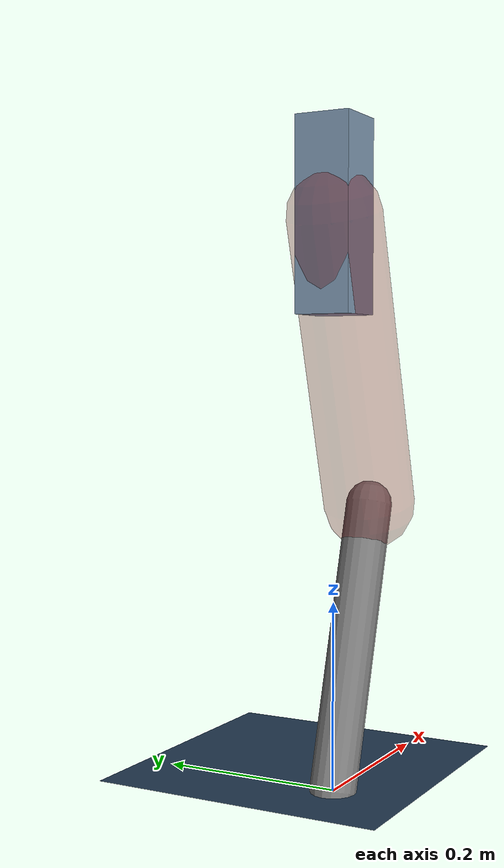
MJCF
<mujoco model="Hopper2D">
	<compiler inertiafromgeom="true" angle="radian" />
	<option timestep="0.001" integrator="implicit" cone="elliptic" solver="Newton" tolerance="1e-10" />

	<default>
		<geom contype="1" conaffinity="1" condim="3" friction="2 0.005 0.0001" solref="0.005 1" />
		<joint limited="true" damping="0.1" />
	</default>

	<asset>
		<texture name="skybox" type="skybox" builtin="gradient" rgb1=".4 .6 .8" rgb2="0 0 0" width="800" height="800" />
		<texture name="grid" type="2d" builtin="checker" rgb1=".1 .2 .3" rgb2=".2 .3 .4" width="300" height="300" mark="edge" markrgb=".2 .3 .4" />
		<material name="ground" texture="grid" texrepeat="1 1" texuniform="true" reflectance="0.1" />
		<material name="leg" rgba="0.5 0.6 0.7 1" />
	</asset>

	<worldbody>

		<geom name="floor" type="plane" size="5 5 0.25" material="ground" />

		<light directional="false" diffuse="0.8 0.8 0.8" specular="0.3 0.3 0.3" pos="0 0 2" dir="0 0 -1" />
		<light mode="targetbodycom" target="base" directional="false" diffuse="0.8 0.8 0.8" specular="0.3 0.3 0.3" pos="0 0 2" dir="0 0 -1" />

		<camera name="fixed" pos="0 -2 1" xyaxes="1 0 0 0 0 1" />
		<camera name="tracking" mode="trackcom" pos="0 -3 1" />

		<body name="root" pos="0 0 0.5984729892410481">
			<joint name="slide_x" type="slide" axis="1 0 0" range="-100 100" />
			<joint name="slide_z" type="slide" axis="0 0 1" range="0 10" />

			<body name="base" pos="0 0 0">
				<geom name="torso" type="box" size="0.03 0.03 0.1" mass="3.4699999999999998" material="leg" />

				<body name="link1" pos="0 0 0" euler="0 1.2868976315067753 0">
					<joint type="hinge" axis="0 -1 0" pos="0 0 0" name="hinge1" limited="true" range="-3.14 3.14" stiffness="0" damping="0.1" />
					<geom name="thigh" type="capsule" fromto="0 0 0 0.3145855859293324 0 0" size="0.05" rgba="0.5 0 0 0.3" mass="1.0283810820091974" />

					<body name="link2" pos="0.3145855859293324 0 0" euler="0 0.5727899156533984 0">
						<joint type="hinge" axis="0 -1 0" pos="0 0 0" name="hinge2" limited="true" range="-3.14 3.14" stiffness="0" damping="0.1" />
						<geom name="shank" type="capsule" fromto="0 0 0 0.3092972106368703 0 0" size="0.025" mass="0.4909674895731833" />

					</body>
				</body>
			</body>
		</body>
	</worldbody>

	<actuator>
		<motor name="torque1" joint="hinge1" ctrlrange="-237.3666678490859 237.3666678490859" ctrllimited="true" gear="1" />
		<motor name="torque2" joint="hinge2" ctrlrange="-87.9744554277749 87.9744554277749" ctrllimited="true" gear="1" />
	</actuator>
</mujoco>
